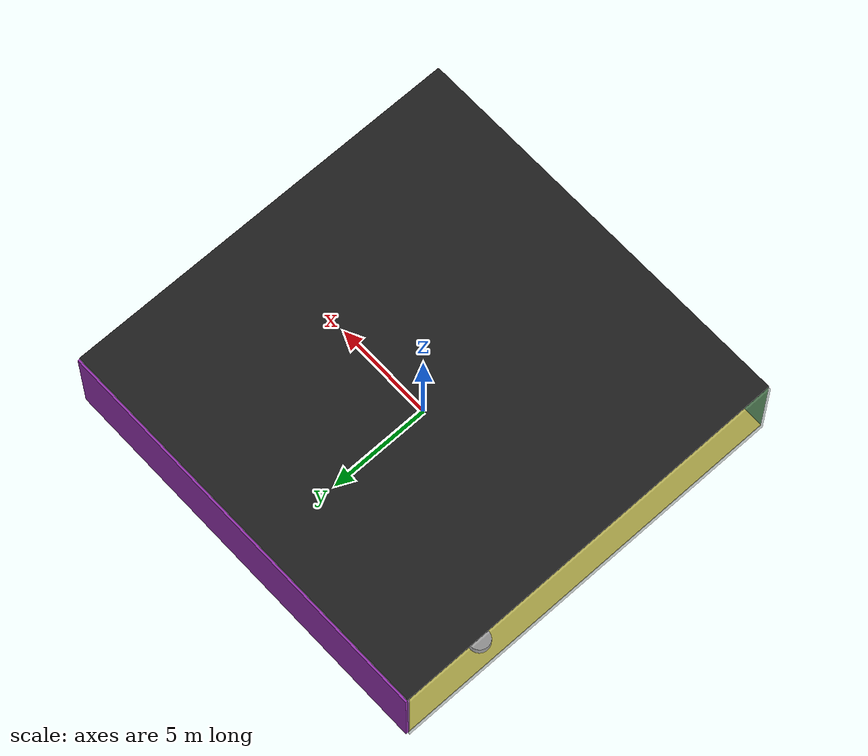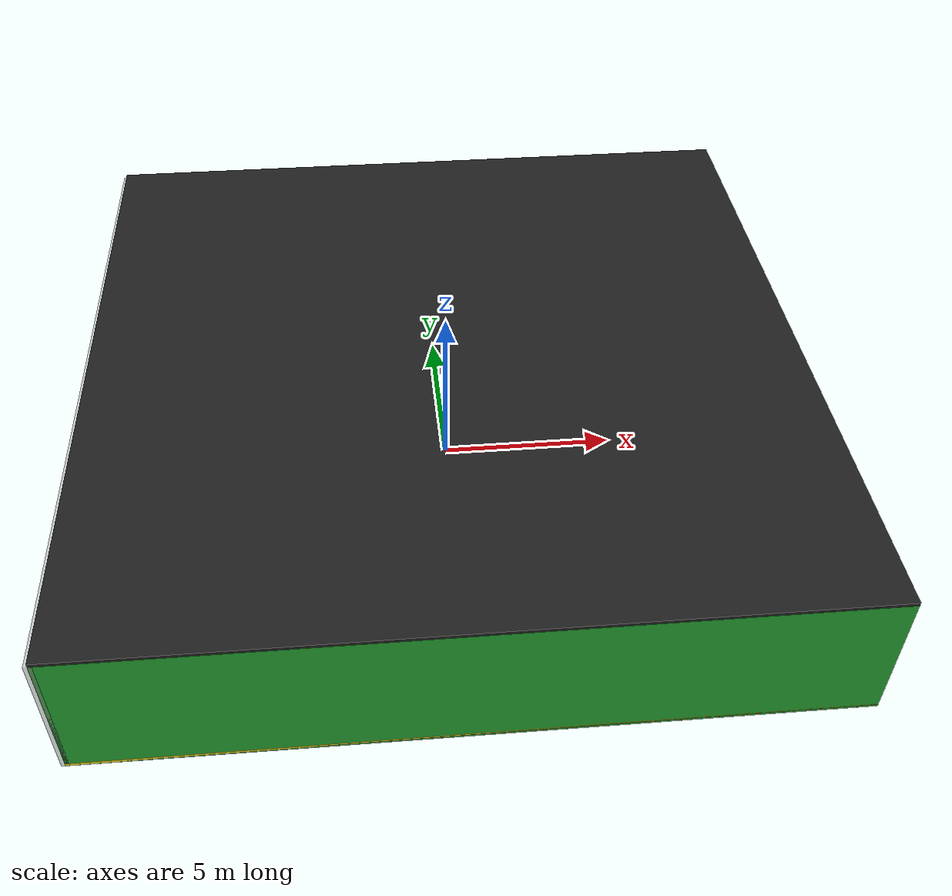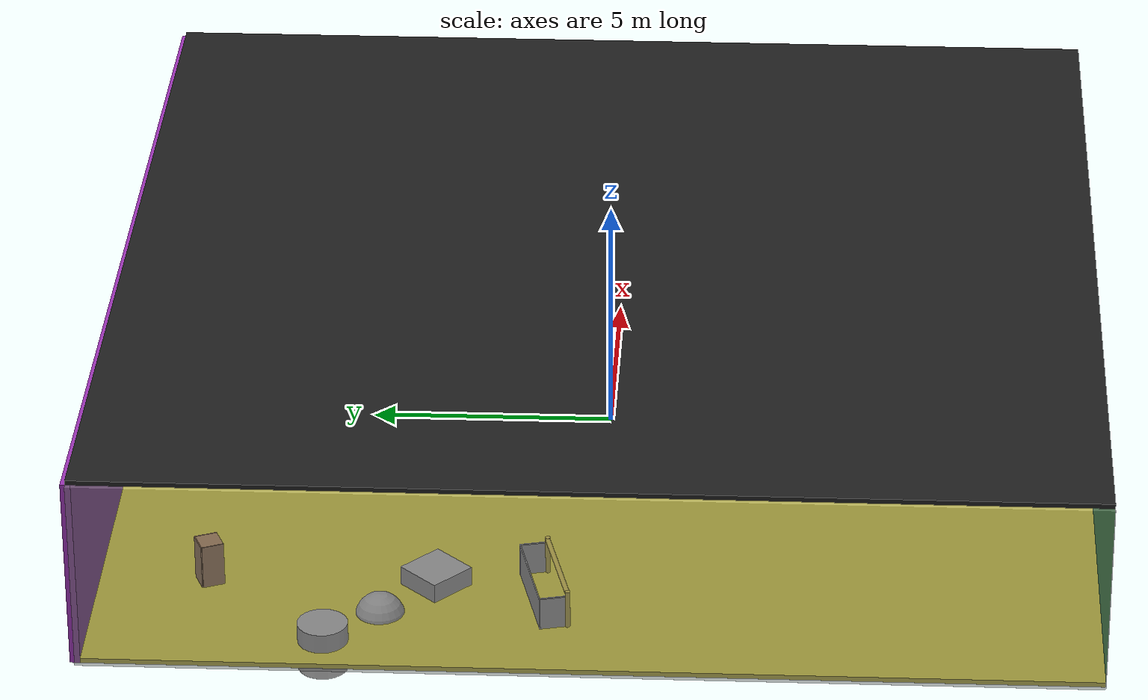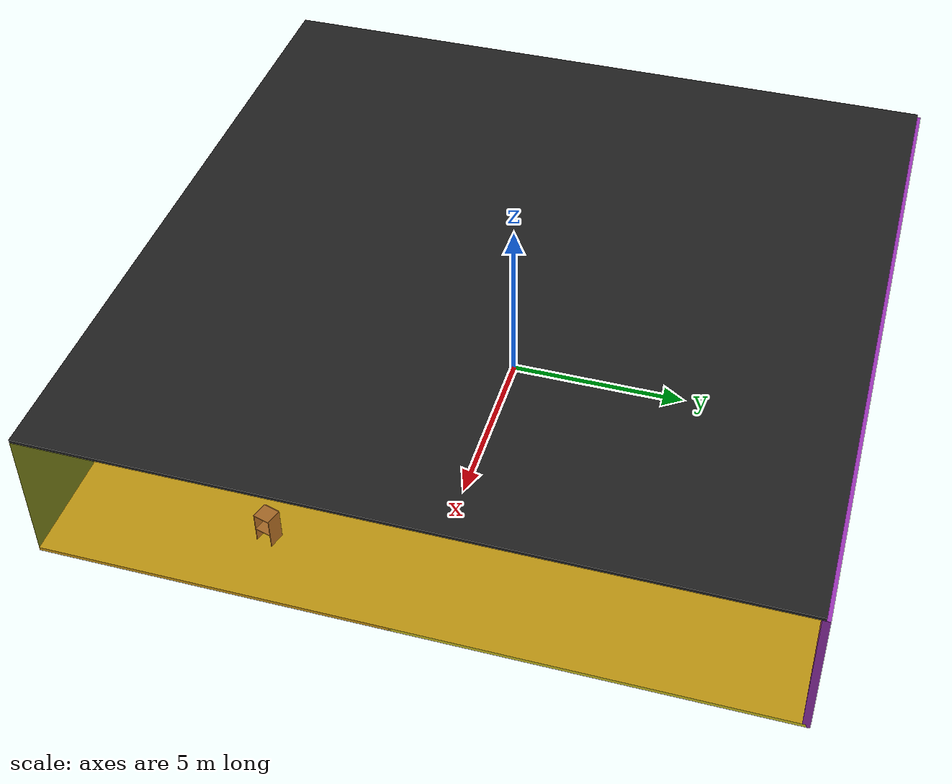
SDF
<sdf version="1.4">
 <world name="default">
  <physics type="ode">
   <max_step_size>0.001</max_step_size>
   <real_time_factor>1</real_time_factor>
   <real_time_update_rate>1000</real_time_update_rate>
   <gravity>0 0 -9.8</gravity>
  </physics>
  <scene><ambient>0.4 0.4 0.4 1</ambient><background>0.7 0.7 0.7 1</background><shadows>1</shadows></scene>
  <model name="Surrounding">
   <static>1</static>
   <link name="Ceiling">
    <collision name="Ceiling_Collision"><geometry><box><size>20 20 0.1</size></box></geometry></collision>
    <visual name="Ceiling_Visual">
     <geometry><box><size>20 20 0.1</size></box></geometry>
     <material>
      <script><uri>file://media/materials/scripts/gazebo.material</uri><name>Gazebo/FlatBlack</name></script>
     </material>
    </visual>
    <pose>0 0 4.05 0 0 0</pose>
   </link>
   <link name="Wall_South">
    <collision name="Wall_South_Collision">
     <geometry><box><size>20 0 4</size></box></geometry>
     <pose>0 0 2 0 -0 0</pose>
    </collision>
    <visual name="Wall_South_Visual">
     <pose>0 0 2 0 -0 0</pose>
     <geometry><box><size>20 0 4</size></box></geometry>
     <material>
      <script><uri>file://media/materials/scripts/gazebo.material</uri><name>Gazebo/GreenGlow</name></script>
     </material>
    </visual>
    <velocity_decay><linear>0</linear><angular>0</angular></velocity_decay>
    <pose>0 -10 0 0 -0 0</pose>
   </link>
   <link name="Wall_East">
    <collision name="Wall_21_Collision">
     <geometry><box><size>20 0 4</size></box></geometry>
     <pose>0 0 2 0 -0 0</pose>
    </collision>
    <visual name="Wall_21_Visual">
     <pose>0 0 2 0 -0 0</pose>
     <geometry><box><size>20 0 4</size></box></geometry>
     <material>
      <script>
       <uri>file://media/materials/scripts/gazebo.material</uri>
       <name>Gazebo/OrangeTransparent</name>
      </script>
     </material>
    </visual>
    <velocity_decay><linear>0</linear><angular>0</angular></velocity_decay>
    <pose>10 0 0 0 -0 1.5708</pose>
   </link>
   <link name="Wall_North">
    <collision name="Wall_22_Collision">
     <geometry><box><size>20 0.2 4</size></box></geometry>
     <pose>0 0 2 0 -0 0</pose>
    </collision>
    <visual name="Wall_22_Visual">
     <pose>0 0 2 0 -0 0</pose>
     <geometry><box><size>20 0.2 4</size></box></geometry>
     <material>
      <script><uri>file://media/materials/scripts/gazebo.material</uri><name>Gazebo/Purple</name></script>
     </material>
    </visual>
    <velocity_decay><linear>0</linear><angular>0</angular></velocity_decay>
    <pose>0 10 0 0 -0 0</pose>
   </link>
   <link name="Wall_West">
    <collision name="Wall_23_Collision">
     <geometry><box><size>20 0.2 4</size></box></geometry>
     <pose>0 0 2 0 -0 0</pose>
    </collision>
    <visual name="Wall_23_Visual">
     <pose>0 0 2 0 -0 0</pose>
     <geometry><box><size>20 0.2 4</size></box></geometry>
     <material>
      <script><uri>file://media/materials/scripts/gazebo.material</uri><name>Gazebo/GreyTransparent</name></script>
     </material>
    </visual>
    <velocity_decay><linear>0</linear><angular>0</angular></velocity_decay>
    <pose>-10 0 0 0 0 -1.5708</pose>
   </link>
   <link name="Ground_link">
    <collision name="collision">
     <pose>0 0 .05 0 -0 0</pose>
     <geometry><box><size>20 20 0.1</size></box></geometry>
    </collision>
    <visual name="visual">
     <pose>0 0 .05 0 -0 0</pose>
     <geometry><box><size>20 20 0.1</size></box></geometry>
     <material>
      <script><uri>file://media/materials/scripts/gazebo.material</uri><name>Gazebo/YellowGlow</name></script>
     </material>
    </visual>
   </link>
   <static>1</static>
  </model>
  <spherical_coordinates>
   <surface_model>EARTH_WGS84</surface_model>
   <latitude_deg>0</latitude_deg>
   <longitude_deg>0</longitude_deg>
   <elevation>0</elevation>
   <heading_deg>0</heading_deg>
  </spherical_coordinates>
  <light name="lightball_0" type="diffuse">
   <diffuse>0.8 0.8 0.8 1</diffuse>
   <specular>0.2 0.2 0.2 1</specular>
   <attenuation>
    <range>100</range>
    <constant>0.7</constant>
    <linear>0.01</linear>
    <quadratic>0.001</quadratic>
   </attenuation>
   <direction>-0.5 0.1 -0.9</direction>
   <pose>7.24778630194 -8.20471046478 2.63485871443 0 0 0</pose>
  </light>
  <light name="lightball_1" type="diffuse">
   <diffuse>0.8 0.8 0.8 1</diffuse>
   <specular>0.2 0.2 0.2 1</specular>
   <attenuation>
    <range>100</range>
    <constant>0.7</constant>
    <linear>0.01</linear>
    <quadratic>0.001</quadratic>
   </attenuation>
   <direction>-0.5 0.1 -0.9</direction>
   <pose>0.497506190133 9.05836944114 1.20660961705 0 0 0</pose>
  </light>
  <light name="lightball_2" type="diffuse">
   <diffuse>0.8 0.8 0.8 1</diffuse>
   <specular>0.2 0.2 0.2 1</specular>
   <attenuation>
    <range>100</range>
    <constant>0.7</constant>
    <linear>0.01</linear>
    <quadratic>0.001</quadratic>
   </attenuation>
   <direction>-0.5 0.1 -0.9</direction>
   <pose>-4.85605619451 -9.80831488409 0.931621707242 0 0 0</pose>
  </light>
  <light name="lightball_3" type="diffuse">
   <diffuse>0.8 0.8 0.8 1</diffuse>
   <specular>0.2 0.2 0.2 1</specular>
   <attenuation>
    <range>100</range>
    <constant>0.7</constant>
    <linear>0.01</linear>
    <quadratic>0.001</quadratic>
   </attenuation>
   <direction>-0.5 0.1 -0.9</direction>
   <pose>0.034685877036 1.96149317442 0.781731464885 0 0 0</pose>
  </light>
  <include>
   <uri>model://robocup_3Dsim_goal</uri>
   <pose>-7.37745608526 0.734837845304 0 0 0 1.81109830094</pose>
  </include>
  <include>
   <uri>model://textured_shapes</uri>
   <pose>-8.02588022465 4.21102085267 0 0 0 0.810146099347</pose>
  </include>
  <include><uri>model://cabinet</uri><pose>-6.9645700374 7.68850869055 0 0 0 1.97497847468</pose></include>
  <include>
   <uri>model://construction_cone</uri>
   <pose>-1.91634937035 1.01359842599 0 0 0 1.27787195049</pose>
  </include>
  <include><uri>model://table</uri><pose>-1.56727714397 8.26157813985 0 0 0 2.64898708536</pose></include>
  <include><uri>model://cabinet</uri><pose>2.15678712308 -8.27681750661 0 0 0 2.23616189809</pose></include>
  <include><uri>model://cabinet</uri><pose>8.04372630884 -4.36824838433 0 0 0 2.86346892396</pose></include>
 </world>
</sdf>

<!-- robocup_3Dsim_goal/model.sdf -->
<sdf version="1.5">
  <model name="robocup_3d_goal">
    <static>true</static>
    <link name="left_post">
      <pose>0 1.05 0.45 0 0 0</pose>
      <collision name="collision">
        <geometry>
          <cylinder>
            <radius>0.05</radius>
            <length>0.9</length>
          </cylinder>
        </geometry>
      </collision>
      <visual name="visual">
        <geometry>
          <cylinder>
            <radius>0.05</radius>
            <length>0.9</length>
          </cylinder>
        </geometry>
        <material>
          <script>
            <uri>file://media/materials/scripts/gazebo.material</uri>
            <name>Gazebo/ZincYellow</name>
          </script>
        </material>
      </visual>
    </link>
    <link name="left_support_horiz_lower">
      <pose>0.30 1.05 0.01 0 0 0</pose>
      <collision name="collision">
        <geometry>
          <box>
            <size>0.50 0.02 0.02</size>
          </box>
        </geometry>
      </collision>
      <visual name="visual">
        <geometry>
          <box>
            <size>0.50 0.02 0.02</size>
          </box>
        </geometry>
        <material>
          <script>
            <uri>file://media/materials/scripts/gazebo.material</uri>
            <name>Gazebo/White</name>
          </script>
        </material>
      </visual>
    </link>
    <link name="left_support_horiz_upper">
      <pose>0.30 1.05 0.79 0 0 0</pose>
      <collision name="collision">
        <geometry>
          <box>
            <size>0.50 0.02 0.02</size>
          </box>
        </geometry>
      </collision>
      <visual name="visual">
        <geometry>
          <box>
            <size>0.50 0.02 0.02</size>
          </box>
        </geometry>
        <material>
          <script>
            <uri>file://media/materials/scripts/gazebo.material</uri>
            <name>Gazebo/White</name>
          </script>
        </material>
      </visual>
    </link>
    <link name="left_support_vertical">
      <pose>0.56 1.05 0.4 0 1.5708 0</pose>
      <collision name="collision">
        <geometry>
          <box>
            <size>0.80 0.02 0.02</size>
          </box>
        </geometry>
      </collision>
      <visual name="visual">
        <geometry>
          <box>
            <size>0.80 0.02 0.02</size>
          </box>
        </geometry>
        <material>
          <script>
            <uri>file://media/materials/scripts/gazebo.material</uri>
            <name>Gazebo/White</name>
          </script>
        </material>
      </visual>
    </link>
    <link name="right_support_horiz_lower">
      <pose>0.30 -1.05 0.01 0 0 0</pose>
      <collision name="collision">
        <geometry>
          <box>
            <size>0.50 0.02 0.02</size>
          </box>
        </geometry>
      </collision>
      <visual name="visual">
        <geometry>
          <box>
            <size>0.50 0.02 0.02</size>
          </box>
        </geometry>
        <material>
          <script>
            <uri>file://media/materials/scripts/gazebo.material</uri>
            <name>Gazebo/White</name>
          </script>
        </material>
      </visual>
    </link>
    <link name="right_support_horiz_upper">
      <pose>0.30 -1.05 0.79 0 0 0</pose>
      <collision name="collision">
        <geometry>
          <box>
            <size>0.50 0.02 0.02</size>
          </box>
        </geometry>
      </collision>
      <visual name="visual">
        <geometry>
          <box>
            <size>0.50 0.02 0.02</size>
          </box>
        </geometry>
        <material>
          <script>
            <uri>file://media/materials/scripts/gazebo.material</uri>
            <name>Gazebo/White</name>
          </script>
        </material>
      </visual>
    </link>
    <link name="right_support_vertical">
      <pose>0.56 -1.05 0.4 0 1.5708 0</pose>
      <collision name="collision">
        <geometry>
          <box>
            <size>0.80 0.02 0.02</size>
          </box>
        </geometry>
      </collision>
      <visual name="visual">
        <geometry>
          <box>
            <size>0.80 0.02 0.02</size>
          </box>
        </geometry>
        <material>
          <script>
            <uri>file://media/materials/scripts/gazebo.material</uri>
            <name>Gazebo/White</name>
          </script>
        </material>
      </visual>
    </link>
    <link name="center_support_horiz_lower">
      <pose>0.56 0 0.01 0 1.5708 0</pose>
      <collision name="collision">
        <geometry>
          <box>
            <size>0.02 2.08 0.02</size>
          </box>
        </geometry>
      </collision>
      <visual name="visual">
        <geometry>
          <box>
            <size>0.02 2.08 0.02</size>
          </box>
        </geometry>
        <material>
          <script>
            <uri>file://media/materials/scripts/gazebo.material</uri>
            <name>Gazebo/White</name>
          </script>
        </material>
      </visual>
    </link>
    <link name="center_support_horiz_upper">
      <pose>0.56 0 0.79 0 1.5708 0</pose>
      <collision name="collision">
        <geometry>
          <box>
            <size>0.02 2.08 0.02</size>
          </box>
        </geometry>
      </collision>
      <visual name="visual">
        <geometry>
          <box>
            <size>0.02 2.08 0.02</size>
          </box>
        </geometry>
        <material>
          <script>
            <uri>file://media/materials/scripts/gazebo.material</uri>
            <name>Gazebo/White</name>
          </script>
        </material>
      </visual>
    </link>
    <link name="right_post">
      <pose>0 -1.05 0.45 0 0 0</pose>
      <collision name="collision">
        <geometry>
          <cylinder>
            <radius>0.05</radius>
            <length>0.9</length>
          </cylinder>
        </geometry>
      </collision>
      <visual name="visual">
        <geometry>
          <cylinder>
            <radius>0.05</radius>
            <length>0.9</length>
          </cylinder>
        </geometry>
        <material>
          <script>
            <uri>file://media/materials/scripts/gazebo.material</uri>
            <name>Gazebo/ZincYellow</name>
          </script>
        </material>
      </visual>
    </link>
    <link name="crossbar">
      <pose>0 0 0.85 1.57 1.57 0</pose>
      <collision name="collision">
        <geometry>
          <cylinder>
            <radius>0.05</radius>
            <length>2.0</length>
          </cylinder>
        </geometry>
      </collision>
      <visual name="visual">
        <geometry>
          <cylinder>
            <radius>0.05</radius>
            <length>2.0</length>
          </cylinder>
        </geometry>
        <material>
          <script>
            <uri>file://media/materials/scripts/gazebo.material</uri>
            <name>Gazebo/ZincYellow</name>
          </script>
        </material>
      </visual>
    </link>
    <link name="center_net">
      <pose>0.56 0 0.40 0 0 0</pose>
      <collision name="collision">
        <geometry>
          <box>
            <size>0.01 2.1 0.80</size>
          </box>
        </geometry>
      </collision>
      <visual name="visual">
        <geometry>
          <box>
            <size>0.01 2.1 0.80</size>
          </box>
        </geometry>
        <material>
          <script>
            <uri>model://../model_source/models/robocup09_spl_field/materials/scripts/</uri>
            <uri>model://../model_source/models/robocup09_spl_field/materials/textures/</uri>
            <name>RoboCup/Net</name>
          </script>
        </material>
      </visual>
    </link>
    <link name="left_net">
      <pose>0.30 1.05 0.40 0 0 0</pose>
      <collision name="collision">
        <geometry>
          <box>
            <size>0.50 0.01 0.76</size>
          </box>
        </geometry>
      </collision>
      <visual name="visual">
        <geometry>
          <box>
            <size>0.50 0.01 0.76</size>
          </box>
        </geometry>
        <material>
          <script>
            <uri>model://../model_source/models/robocup09_spl_field/materials/scripts/</uri>
            <uri>model://../model_source/models/robocup09_spl_field/materials/textures/</uri>
            <name>RoboCup/Net</name>
          </script>
        </material>
      </visual>
    </link>
    <link name="right_net">
      <pose>0.30 -1.05 0.40 0 0 0</pose>
      <collision name="collision">
        <geometry>
          <box>
            <size>0.50 0.01 0.76</size>
          </box>
        </geometry>
      </collision>
      <visual name="visual">
        <geometry>
          <box>
            <size>0.50 0.01 0.76</size>
          </box>
        </geometry>
        <material>
          <script>
            <uri>model://../model_source/models/robocup09_spl_field/materials/scripts/</uri>
            <uri>model://../model_source/models/robocup09_spl_field/materials/textures/</uri>
            <name>RoboCup/Net</name>
          </script>
        </material>
      </visual>
    </link>
  </model>
</sdf>

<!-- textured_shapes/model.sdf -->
<sdf version="1.6">
  <model name="textured_shapes">
    <pose>0 0 0.5 0 0 0</pose>
    <link name="box">
      <pose>0 -1.5 0 0 0 0</pose>
      <collision name="collision">
        <geometry>
          <box>
            <size>1 1 1</size>
          </box>
        </geometry>
      </collision>
      <visual name="visual">
        <geometry>
          <box>
            <size>1 1 1</size>
          </box>
        </geometry>
        <material>
          <script>
            <uri>model://../model_source/models/textured_shapes/materials/scripts</uri>
            <uri>model://../model_source/models/textured_shapes/materials/textures</uri>
            <name>TexturedShape/Squares</name>
          </script>
        </material>
      </visual>
    </link>
    <link name="sphere">
      <collision name="collision">
        <geometry>
          <sphere>
            <radius>0.5</radius>
          </sphere>
        </geometry>
      </collision>
      <visual name="visual">
        <geometry>
          <sphere>
            <radius>0.5</radius>
          </sphere>
        </geometry>
        <material>
          <script>
            <uri>model://../model_source/models/textured_shapes/materials/scripts</uri>
            <uri>model://../model_source/models/textured_shapes/materials/textures</uri>
            <name>TexturedShape/Squares</name>
          </script>
        </material>
      </visual>
    </link>
    <link name="cylinder">
      <pose>0 1.5 0 0 0 0</pose>
      <collision name="collision">
        <geometry>
          <cylinder>
            <radius>0.5</radius>
            <length>1</length>
          </cylinder>
        </geometry>
      </collision>
      <visual name="visual">
        <geometry>
          <cylinder>
            <radius>0.5</radius>
            <length>1</length>
          </cylinder>
        </geometry>
        <material>
          <script>
            <uri>model://../model_source/models/textured_shapes/materials/scripts</uri>
            <uri>model://../model_source/models/textured_shapes/materials/textures</uri>
            <name>TexturedShape/Squares</name>
          </script>
        </material>
      </visual>
    </link>
  </model>
</sdf>

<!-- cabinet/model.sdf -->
<sdf version="1.5">
  <model name="cabinet">
    <static>true</static>
    <link name="cabinet_bottom_plate">
      <inertial>
        <pose>0 0 -1 0 0 0</pose>
        <inertia>
          <ixx>2.050000</ixx>
          <ixy>0</ixy>
          <ixz>0</ixz>
          <iyy>2.050000</iyy>
          <iyz>0</iyz>
          <izz>2.050000</izz>
        </inertia>
        <mass>25.000000</mass>
      </inertial>
      <collision name="cabinet_bottom_plate_geom">
        <pose>0 0 0.010000 0 0 0</pose>
        <geometry>
          <box>
            <size>0.450000 0.450000 0.020000</size>
          </box>
        </geometry>
      </collision>
      <visual name="cabinet_bottom_plate_geom_visual">
        <pose>0 0 0.010000 0 0 0</pose>
        <geometry>
          <box>
            <size>0.450000 0.450000 0.020000</size>
          </box>
        </geometry>
        <material>
          <script>
            <uri>model://media/materials/scripts/gazebo.material</uri>
            <name>Gazebo/Wood</name>
          </script>
        </material>
      </visual>
      <collision name="cabinet_bottom_plate_geom_cabinet_back_plate">
        <pose>0.235000 0 0.510000 0 0 0</pose>
        <geometry>
          <box>
            <size>0.020000 0.450000 1.020000</size>
          </box>
        </geometry>
      </collision>
      <visual name="cabinet_bottom_plate_geom_cabinet_back_plate_visual">
        <pose>0.235000 0 0.510000 0 0 0</pose>
        <geometry>
          <box>
            <size>0.020000 0.450000 1.020000</size>
          </box>
        </geometry>
        <material>
          <script>
            <uri>model://media/materials/scripts/gazebo.material</uri>
            <name>Gazebo/Wood</name>
          </script>
        </material>
      </visual>
      <collision name="cabinet_bottom_plate_geom_cabinet_left_plate">
        <pose>0 0.235000 0.510000 0 0 0</pose>
        <geometry>
          <box>
            <size>0.450000 0.020000 1.020000</size>
          </box>
        </geometry>
      </collision>
      <visual name="cabinet_bottom_plate_geom_cabinet_left_plate_visual">
        <pose>0 0.235000 0.510000 0 0 0</pose>
        <geometry>
          <box>
            <size>0.450000 0.020000 1.020000</size>
          </box>
        </geometry>
        <material>
          <script>
            <uri>model://media/materials/scripts/gazebo.material</uri>
            <name>Gazebo/Wood</name>
          </script>
        </material>
      </visual>
      <collision name="cabinet_bottom_plate_geom_cabinet_middle_plate">
        <pose>0 0 0.510000 0 0 0</pose>
        <geometry>
          <box>
            <size>0.450000 0.450000 0.020000</size>
          </box>
        </geometry>
      </collision>
      <visual name="cabinet_bottom_plate_geom_cabinet_middle_plate_visual">
        <pose>0 0 0.510000 0 0 0</pose>
        <geometry>
          <box>
            <size>0.450000 0.450000 0.020000</size>
          </box>
        </geometry>
        <material>
          <script>
            <uri>model://media/materials/scripts/gazebo.material</uri>
            <name>Gazebo/Wood</name>
          </script>
        </material>
      </visual>
      <collision name="cabinet_bottom_plate_geom_cabinet_right_plate">
        <pose>0 -0.235000 0.510000 0 0 0</pose>
        <geometry>
          <box>
            <size>0.450000 0.020000 1.020000</size>
          </box>
        </geometry>
      </collision>
      <visual name="cabinet_bottom_plate_geom_cabinet_right_plate_visual">
        <pose>0 -0.235000 0.510000 0 0 0</pose>
        <geometry>
          <box>
            <size>0.450000 0.020000 1.020000</size>
          </box>
        </geometry>
        <material>
          <script>
            <uri>model://media/materials/scripts/gazebo.material</uri>
            <name>Gazebo/Wood</name>
          </script>
        </material>
      </visual>
      <collision name="cabinet_bottom_plate_geom_cabinet_top_plate">
        <pose>0 0 1.010000 0 0 0</pose>
        <geometry>
          <box>
            <size>0.450000 0.450000 0.020000</size>
          </box>
        </geometry>
      </collision>
      <visual name="cabinet_bottom_plate_geom_cabinet_top_plate_visual">
        <pose>0 0 1.010000 0 0 0</pose>
        <geometry>
          <box>
            <size>0.450000 0.450000 0.020000</size>
          </box>
        </geometry>
        <material>
          <script>
            <uri>model://media/materials/scripts/gazebo.material</uri>
            <name>Gazebo/Wood</name>
          </script>
        </material>
      </visual>
    </link>
  </model>
</sdf>

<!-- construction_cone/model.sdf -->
<sdf version="1.5">
  <model name="Construction Cone">
    <link name="link">
      <collision name="collision">
        <geometry>
          <mesh>
            <scale>10 10 10</scale>
            <uri>file://isr-testbed/construction_cone/meshes/construction_cone.dae</uri>
          </mesh>
        </geometry>
      </collision>
      <visual name="visual">
        <geometry>
          <mesh>
            <scale>10 10 10</scale>
            <uri>file://isr-testbed/construction_cone/meshes/construction_cone.dae</uri>
          </mesh>
        </geometry>
      </visual>
    </link>
  </model>
</sdf>

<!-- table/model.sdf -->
<sdf version="1.5">
  <model name="table">
    <static>true</static>
    <link name="link">
      <collision name="surface">
        <pose>0 0 1.0 0 0 0</pose>
        <geometry>
          <box>
            <size>1.5 0.8 0.03</size>
          </box>
        </geometry>
        <surface>
          <friction>
            <ode>
              <mu>0.6</mu>
              <mu2>0.6</mu2>
            </ode>
          </friction>
        </surface>
      </collision>
      <visual name="visual1">
        <pose>0 0 1.0 0 0 0</pose>
        <geometry>
          <box>
            <size>1.5 0.8 0.03</size>
          </box>
        </geometry>
        <material>
          <script>
            <uri>model://media/materials/scripts/gazebo.material</uri>
            <name>Gazebo/Wood</name>
          </script>
        </material>
      </visual>
      <collision name="front_left_leg">
        <pose>0.68 0.38 0.5 0 0 0</pose>
        <geometry>
          <cylinder>
            <radius>0.02</radius>
            <length>1.0</length>
          </cylinder>
        </geometry>
      </collision>
      <visual name="front_left_leg">
        <pose>0.68 0.38 0.5 0 0 0</pose>
        <geometry>
          <cylinder>
            <radius>0.02</radius>
            <length>1.0</length>
          </cylinder>
        </geometry>
        <material>
          <script>
            <uri>model://media/materials/scripts/gazebo.material</uri>
            <name>Gazebo/Grey</name>
          </script>
        </material>
      </visual>
      <collision name="front_right_leg">
        <pose>0.68 -0.38 0.5 0 0 0</pose>
        <geometry>
          <cylinder>
            <radius>0.02</radius>
            <length>1.0</length>
          </cylinder>
        </geometry>
      </collision>
      <visual name="front_right_leg">
        <pose>0.68 -0.38 0.5 0 0 0</pose>
        <geometry>
          <cylinder>
            <radius>0.02</radius>
            <length>1.0</length>
          </cylinder>
        </geometry>
        <material>
          <script>
            <uri>model://media/materials/scripts/gazebo.material</uri>
            <name>Gazebo/Grey</name>
          </script>
        </material>
      </visual>
      <collision name="back_right_leg">
        <pose>-0.68 -0.38 0.5 0 0 0</pose>
        <geometry>
          <cylinder>
            <radius>0.02</radius>
            <length>1.0</length>
          </cylinder>
        </geometry>
      </collision>
      <visual name="back_right_leg">
        <pose>-0.68 -0.38 0.5 0 0 0</pose>
        <geometry>
          <cylinder>
            <radius>0.02</radius>
            <length>1.0</length>
          </cylinder>
        </geometry>
        <material>
          <script>
            <uri>model://media/materials/scripts/gazebo.material</uri>
            <name>Gazebo/Grey</name>
          </script>
        </material>
      </visual>
      <collision name="back_left_leg">
        <pose>-0.68 0.38 0.5 0 0 0</pose>
        <geometry>
          <cylinder>
            <radius>0.02</radius>
            <length>1.0</length>
          </cylinder>
        </geometry>
      </collision>
      <visual name="back_left_leg">
        <pose>-0.68 0.38 0.5 0 0 0</pose>
        <geometry>
          <cylinder>
            <radius>0.02</radius>
            <length>1.0</length>
          </cylinder>
        </geometry>
        <material>
          <script>
            <uri>model://media/materials/scripts/gazebo.material</uri>
            <name>Gazebo/Grey</name>
          </script>
        </material>
      </visual>
    </link>
  </model>
</sdf>
